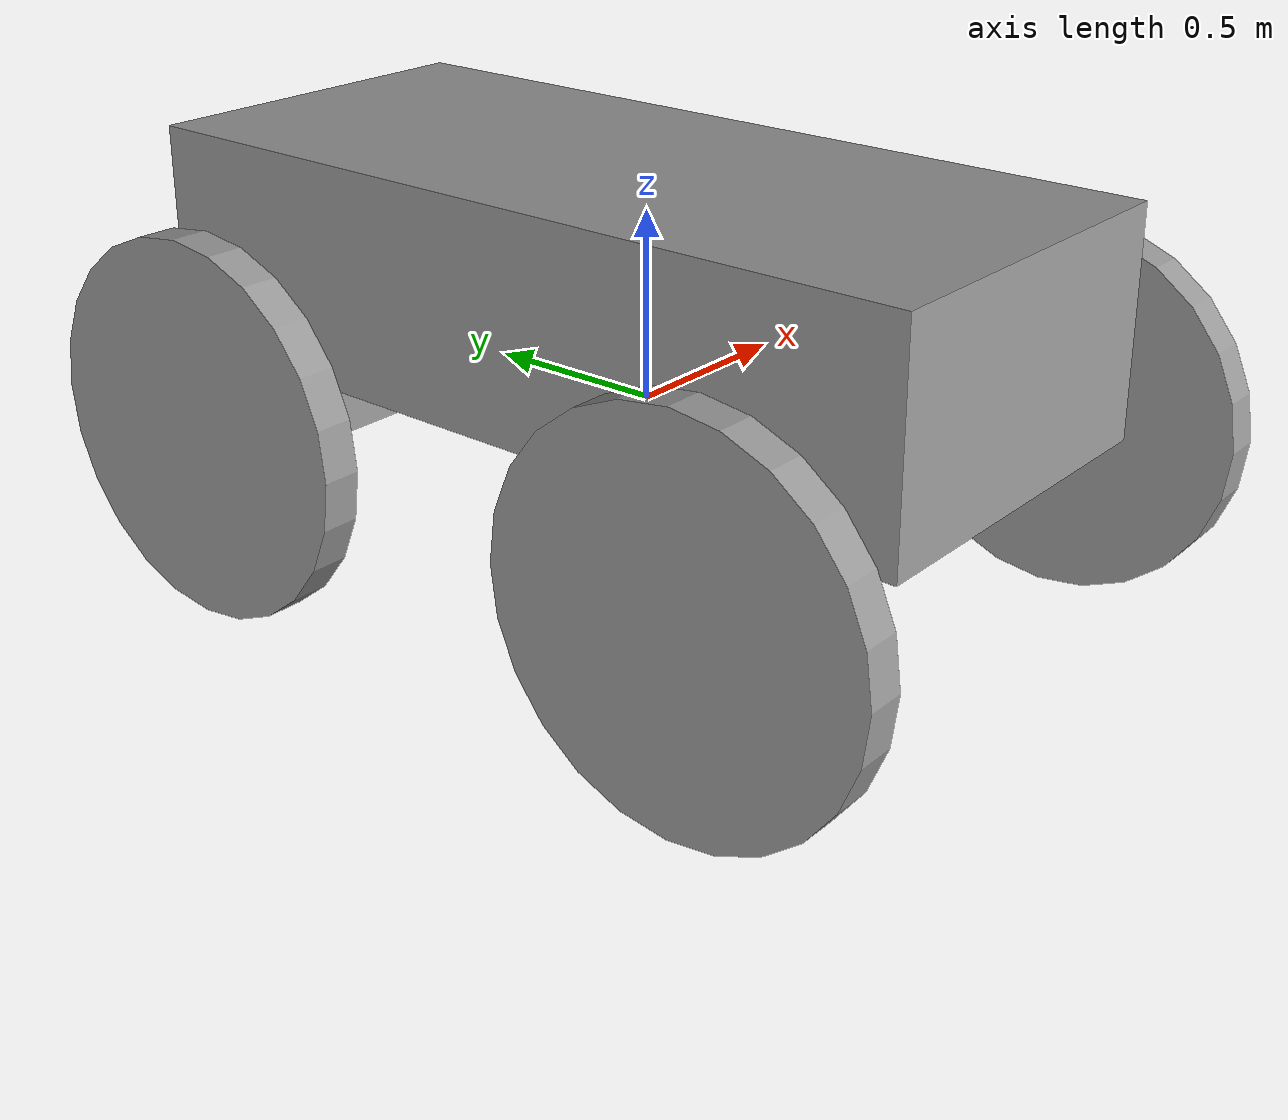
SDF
<?xml version='1.0'?>
<sdf version='1.6'>
  <model name='model'>
    <link name='link_0_clone'>
      <inertial>
        <mass>1</mass>
        <inertia>
          <ixx>0.145833</ixx>
          <ixy>0</ixy>
          <ixz>0</ixz>
          <iyy>0.145833</iyy>
          <iyz>0</iyz>
          <izz>0.125</izz>
        </inertia>
        <pose frame=''>0 0 0 0 -0 0</pose>
      </inertial>
      <pose frame=''>0.800049 0.773824 -0.030357 0 -0 0</pose>
      <gravity>1</gravity>
      <self_collide>0</self_collide>
      <kinematic>0</kinematic>
      <enable_wind>0</enable_wind>
      <visual name='visual'>
        <pose frame=''>0 0 0 0 1.5707 0</pose>
        <geometry>
          <cylinder>
            <radius>0.5</radius>
            <length>0.1</length>
          </cylinder>
        </geometry>
        <material>
          <lighting>1</lighting>
          <script>
            <uri>file://media/materials/scripts/gazebo.material</uri>
            <name>Gazebo/Grey</name>
          </script>
          <shader type='vertex'>
            <normal_map>__default__</normal_map>
          </shader>
          <ambient>0.3 0.3 0.3 1</ambient>
          <diffuse>0.7 0.7 0.7 1</diffuse>
          <specular>0.01 0.01 0.01 1</specular>
          <emissive>0 0 0 1</emissive>
        </material>
        <transparency>0</transparency>
        <cast_shadows>1</cast_shadows>
      </visual>
      <collision name='collision'>
        <laser_retro>0</laser_retro>
        <max_contacts>10</max_contacts>
        <pose frame=''>0 0 0 0 1.5707 0</pose>
        <geometry>
          <cylinder>
            <radius>0.5</radius>
            <length>0.1</length>
          </cylinder>
        </geometry>
        <surface>
          <friction>
            <ode>
              <mu>1</mu>
              <mu2>1</mu2>
              <fdir1>0 0 0</fdir1>
              <slip1>0</slip1>
              <slip2>0</slip2>
            </ode>
            <torsional>
              <coefficient>1</coefficient>
              <patch_radius>0</patch_radius>
              <surface_radius>0</surface_radius>
              <use_patch_radius>1</use_patch_radius>
              <ode>
                <slip>0</slip>
              </ode>
            </torsional>
          </friction>
          <bounce>
            <restitution_coefficient>0</restitution_coefficient>
            <threshold>1e+06</threshold>
          </bounce>
          <contact>
            <collide_without_contact>0</collide_without_contact>
            <collide_without_contact_bitmask>1</collide_without_contact_bitmask>
            <collide_bitmask>1</collide_bitmask>
            <ode>
              <soft_cfm>0</soft_cfm>
              <soft_erp>0.2</soft_erp>
              <kp>1e+13</kp>
              <kd>1</kd>
              <max_vel>0.01</max_vel>
              <min_depth>0</min_depth>
            </ode>
            <bullet>
              <split_impulse>1</split_impulse>
              <split_impulse_penetration_threshold>-0.01</split_impulse_penetration_threshold>
              <soft_cfm>0</soft_cfm>
              <soft_erp>0.2</soft_erp>
              <kp>1e+13</kp>
              <kd>1</kd>
            </bullet>
          </contact>
        </surface>
      </collision>
    </link>
    <link name='link_0_clone_clone'>
      <inertial>
        <mass>1</mass>
        <inertia>
          <ixx>0.145833</ixx>
          <ixy>0</ixy>
          <ixz>0</ixz>
          <iyy>0.145833</iyy>
          <iyz>0</iyz>
          <izz>0.125</izz>
        </inertia>
        <pose frame=''>0 0 0 0 -0 0</pose>
      </inertial>
      <pose frame=''>-0.800048 0.773824 -0.030357 0 -0 0</pose>
      <gravity>1</gravity>
      <self_collide>0</self_collide>
      <kinematic>0</kinematic>
      <enable_wind>0</enable_wind>
      <visual name='visual'>
        <pose frame=''>0 0 0 0 1.5707 0</pose>
        <geometry>
          <cylinder>
            <radius>0.5</radius>
            <length>0.1</length>
          </cylinder>
        </geometry>
        <material>
          <lighting>1</lighting>
          <script>
            <uri>file://media/materials/scripts/gazebo.material</uri>
            <name>Gazebo/Grey</name>
          </script>
          <shader type='vertex'>
            <normal_map>__default__</normal_map>
          </shader>
          <ambient>0.3 0.3 0.3 1</ambient>
          <diffuse>0.7 0.7 0.7 1</diffuse>
          <specular>0.01 0.01 0.01 1</specular>
          <emissive>0 0 0 1</emissive>
        </material>
        <transparency>0</transparency>
        <cast_shadows>1</cast_shadows>
      </visual>
      <collision name='collision'>
        <laser_retro>0</laser_retro>
        <max_contacts>10</max_contacts>
        <pose frame=''>0 0 0 0 1.5707 0</pose>
        <geometry>
          <cylinder>
            <radius>0.5</radius>
            <length>0.1</length>
          </cylinder>
        </geometry>
        <surface>
          <friction>
            <ode>
              <mu>1</mu>
              <mu2>1</mu2>
              <fdir1>0 0 0</fdir1>
              <slip1>0</slip1>
              <slip2>0</slip2>
            </ode>
            <torsional>
              <coefficient>1</coefficient>
              <patch_radius>0</patch_radius>
              <surface_radius>0</surface_radius>
              <use_patch_radius>1</use_patch_radius>
              <ode>
                <slip>0</slip>
              </ode>
            </torsional>
          </friction>
          <bounce>
            <restitution_coefficient>0</restitution_coefficient>
            <threshold>1e+06</threshold>
          </bounce>
          <contact>
            <collide_without_contact>0</collide_without_contact>
            <collide_without_contact_bitmask>1</collide_without_contact_bitmask>
            <collide_bitmask>1</collide_bitmask>
            <ode>
              <soft_cfm>0</soft_cfm>
              <soft_erp>0.2</soft_erp>
              <kp>1e+13</kp>
              <kd>1</kd>
              <max_vel>0.01</max_vel>
              <min_depth>0</min_depth>
            </ode>
            <bullet>
              <split_impulse>1</split_impulse>
              <split_impulse_penetration_threshold>-0.01</split_impulse_penetration_threshold>
              <soft_cfm>0</soft_cfm>
              <soft_erp>0.2</soft_erp>
              <kp>1e+13</kp>
              <kd>1</kd>
            </bullet>
          </contact>
        </surface>
      </collision>
    </link>
    <link name='link_0_clone_clone_clone'>
      <inertial>
        <mass>1</mass>
        <inertia>
          <ixx>0.145833</ixx>
          <ixy>0</ixy>
          <ixz>0</ixz>
          <iyy>0.145833</iyy>
          <iyz>0</iyz>
          <izz>0.125</izz>
        </inertia>
        <pose frame=''>0 0 0 0 -0 0</pose>
      </inertial>
      <pose frame=''>-0.800048 -0.758676 -0.062857 0 -0 0</pose>
      <gravity>1</gravity>
      <self_collide>0</self_collide>
      <kinematic>0</kinematic>
      <enable_wind>0</enable_wind>
      <visual name='visual'>
        <pose frame=''>0 0 0 0 1.5707 0</pose>
        <geometry>
          <cylinder>
            <radius>0.5</radius>
            <length>0.1</length>
          </cylinder>
        </geometry>
        <material>
          <lighting>1</lighting>
          <script>
            <uri>file://media/materials/scripts/gazebo.material</uri>
            <name>Gazebo/Grey</name>
          </script>
          <shader type='vertex'>
            <normal_map>__default__</normal_map>
          </shader>
          <ambient>0.3 0.3 0.3 1</ambient>
          <diffuse>0.7 0.7 0.7 1</diffuse>
          <specular>0.01 0.01 0.01 1</specular>
          <emissive>0 0 0 1</emissive>
        </material>
        <transparency>0</transparency>
        <cast_shadows>1</cast_shadows>
      </visual>
      <collision name='collision'>
        <laser_retro>0</laser_retro>
        <max_contacts>10</max_contacts>
        <pose frame=''>0 0 0 0 1.5707 0</pose>
        <geometry>
          <cylinder>
            <radius>0.5</radius>
            <length>0.1</length>
          </cylinder>
        </geometry>
        <surface>
          <friction>
            <ode>
              <mu>1</mu>
              <mu2>1</mu2>
              <fdir1>0 0 0</fdir1>
              <slip1>0</slip1>
              <slip2>0</slip2>
            </ode>
            <torsional>
              <coefficient>1</coefficient>
              <patch_radius>0</patch_radius>
              <surface_radius>0</surface_radius>
              <use_patch_radius>1</use_patch_radius>
              <ode>
                <slip>0</slip>
              </ode>
            </torsional>
          </friction>
          <bounce>
            <restitution_coefficient>0</restitution_coefficient>
            <threshold>1e+06</threshold>
          </bounce>
          <contact>
            <collide_without_contact>0</collide_without_contact>
            <collide_without_contact_bitmask>1</collide_without_contact_bitmask>
            <collide_bitmask>1</collide_bitmask>
            <ode>
              <soft_cfm>0</soft_cfm>
              <soft_erp>0.2</soft_erp>
              <kp>1e+13</kp>
              <kd>1</kd>
              <max_vel>0.01</max_vel>
              <min_depth>0</min_depth>
            </ode>
            <bullet>
              <split_impulse>1</split_impulse>
              <split_impulse_penetration_threshold>-0.01</split_impulse_penetration_threshold>
              <soft_cfm>0</soft_cfm>
              <soft_erp>0.2</soft_erp>
              <kp>1e+13</kp>
              <kd>1</kd>
            </bullet>
          </contact>
        </surface>
      </collision>
    </link>
    <link name='link_0_clone_clone_clone_0'>
      <inertial>
        <mass>1</mass>
        <inertia>
          <ixx>0.145833</ixx>
          <ixy>0</ixy>
          <ixz>0</ixz>
          <iyy>0.145833</iyy>
          <iyz>0</iyz>
          <izz>0.125</izz>
        </inertia>
        <pose frame=''>0 0 0 0 -0 0</pose>
      </inertial>
      <pose frame=''>0.800049 -0.758676 -0.062857 0 -0 0</pose>
      <gravity>1</gravity>
      <self_collide>0</self_collide>
      <kinematic>0</kinematic>
      <enable_wind>0</enable_wind>
      <visual name='visual'>
        <pose frame=''>0 0 0 0 1.5707 0</pose>
        <geometry>
          <cylinder>
            <radius>0.5</radius>
            <length>0.1</length>
          </cylinder>
        </geometry>
        <material>
          <lighting>1</lighting>
          <script>
            <uri>file://media/materials/scripts/gazebo.material</uri>
            <name>Gazebo/Grey</name>
          </script>
          <shader type='vertex'>
            <normal_map>__default__</normal_map>
          </shader>
          <ambient>0.3 0.3 0.3 1</ambient>
          <diffuse>0.7 0.7 0.7 1</diffuse>
          <specular>0.01 0.01 0.01 1</specular>
          <emissive>0 0 0 1</emissive>
        </material>
        <transparency>0</transparency>
        <cast_shadows>1</cast_shadows>
      </visual>
      <collision name='collision'>
        <laser_retro>0</laser_retro>
        <max_contacts>10</max_contacts>
        <pose frame=''>0 0 0 0 1.5707 0</pose>
        <geometry>
          <cylinder>
            <radius>0.5</radius>
            <length>0.1</length>
          </cylinder>
        </geometry>
        <surface>
          <friction>
            <ode>
              <mu>1</mu>
              <mu2>1</mu2>
              <fdir1>0 0 0</fdir1>
              <slip1>0</slip1>
              <slip2>0</slip2>
            </ode>
            <torsional>
              <coefficient>1</coefficient>
              <patch_radius>0</patch_radius>
              <surface_radius>0</surface_radius>
              <use_patch_radius>1</use_patch_radius>
              <ode>
                <slip>0</slip>
              </ode>
            </torsional>
          </friction>
          <bounce>
            <restitution_coefficient>0</restitution_coefficient>
            <threshold>1e+06</threshold>
          </bounce>
          <contact>
            <collide_without_contact>0</collide_without_contact>
            <collide_without_contact_bitmask>1</collide_without_contact_bitmask>
            <collide_bitmask>1</collide_bitmask>
            <ode>
              <soft_cfm>0</soft_cfm>
              <soft_erp>0.2</soft_erp>
              <kp>1e+13</kp>
              <kd>1</kd>
              <max_vel>0.01</max_vel>
              <min_depth>0</min_depth>
            </ode>
            <bullet>
              <split_impulse>1</split_impulse>
              <split_impulse_penetration_threshold>-0.01</split_impulse_penetration_threshold>
              <soft_cfm>0</soft_cfm>
              <soft_erp>0.2</soft_erp>
              <kp>1e+13</kp>
              <kd>1</kd>
            </bullet>
          </contact>
        </surface>
      </collision>
    </link>
    <link name='link_1'>
      <inertial>
        <mass>1</mass>
        <inertia>
          <ixx>0.166667</ixx>
          <ixy>0</ixy>
          <ixz>0</ixz>
          <iyy>0.166667</iyy>
          <iyz>0</iyz>
          <izz>0.166667</izz>
        </inertia>
        <pose frame=''>0 0 0 0 -0 0</pose>
      </inertial>
      <pose frame=''>0 0.741324 -0.062857 0 -0 0</pose>
      <gravity>1</gravity>
      <self_collide>0</self_collide>
      <kinematic>0</kinematic>
      <enable_wind>0</enable_wind>
      <visual name='visual'>
        <pose frame=''>0 0 0 0 -0 0</pose>
        <geometry>
          <box>
            <size>1.5 0.15 0.15</size>
          </box>
        </geometry>
        <material>
          <lighting>1</lighting>
          <script>
            <uri>file://media/materials/scripts/gazebo.material</uri>
            <name>Gazebo/Grey</name>
          </script>
          <shader type='vertex'>
            <normal_map>__default__</normal_map>
          </shader>
          <ambient>0.3 0.3 0.3 1</ambient>
          <diffuse>0.7 0.7 0.7 1</diffuse>
          <specular>0.01 0.01 0.01 1</specular>
          <emissive>0 0 0 1</emissive>
        </material>
        <transparency>0</transparency>
        <cast_shadows>1</cast_shadows>
      </visual>
      <collision name='collision'>
        <laser_retro>0</laser_retro>
        <max_contacts>10</max_contacts>
        <pose frame=''>0 0 0 0 -0 0</pose>
        <geometry>
          <box>
            <size>1.5 0.15 0.15</size>
          </box>
        </geometry>
        <surface>
          <friction>
            <ode>
              <mu>1</mu>
              <mu2>1</mu2>
              <fdir1>0 0 0</fdir1>
              <slip1>0</slip1>
              <slip2>0</slip2>
            </ode>
            <torsional>
              <coefficient>1</coefficient>
              <patch_radius>0</patch_radius>
              <surface_radius>0</surface_radius>
              <use_patch_radius>1</use_patch_radius>
              <ode>
                <slip>0</slip>
              </ode>
            </torsional>
          </friction>
          <bounce>
            <restitution_coefficient>0</restitution_coefficient>
            <threshold>1e+06</threshold>
          </bounce>
          <contact>
            <collide_without_contact>0</collide_without_contact>
            <collide_without_contact_bitmask>1</collide_without_contact_bitmask>
            <collide_bitmask>1</collide_bitmask>
            <ode>
              <soft_cfm>0</soft_cfm>
              <soft_erp>0.2</soft_erp>
              <kp>1e+13</kp>
              <kd>1</kd>
              <max_vel>0.01</max_vel>
              <min_depth>0</min_depth>
            </ode>
            <bullet>
              <split_impulse>1</split_impulse>
              <split_impulse_penetration_threshold>-0.01</split_impulse_penetration_threshold>
              <soft_cfm>0</soft_cfm>
              <soft_erp>0.2</soft_erp>
              <kp>1e+13</kp>
              <kd>1</kd>
            </bullet>
          </contact>
        </surface>
      </collision>
    </link>
    <link name='link_1_clone'>
      <inertial>
        <mass>1</mass>
        <inertia>
          <ixx>0.166667</ixx>
          <ixy>0</ixy>
          <ixz>0</ixz>
          <iyy>0.166667</iyy>
          <iyz>0</iyz>
          <izz>0.166667</izz>
        </inertia>
        <pose frame=''>0 0 0 0 -0 0</pose>
      </inertial>
      <pose frame=''>0 -0.758676 -0.062857 0 -0 0</pose>
      <gravity>1</gravity>
      <self_collide>0</self_collide>
      <kinematic>0</kinematic>
      <enable_wind>0</enable_wind>
      <visual name='visual'>
        <pose frame=''>0 0 0 0 -0 0</pose>
        <geometry>
          <box>
            <size>1.5 0.15 0.15</size>
          </box>
        </geometry>
        <material>
          <lighting>1</lighting>
          <script>
            <uri>file://media/materials/scripts/gazebo.material</uri>
            <name>Gazebo/Grey</name>
          </script>
          <shader type='vertex'>
            <normal_map>__default__</normal_map>
          </shader>
          <ambient>0.3 0.3 0.3 1</ambient>
          <diffuse>0.7 0.7 0.7 1</diffuse>
          <specular>0.01 0.01 0.01 1</specular>
          <emissive>0 0 0 1</emissive>
        </material>
        <transparency>0</transparency>
        <cast_shadows>1</cast_shadows>
      </visual>
      <collision name='collision'>
        <laser_retro>0</laser_retro>
        <max_contacts>10</max_contacts>
        <pose frame=''>0 0 0 0 -0 0</pose>
        <geometry>
          <box>
            <size>1.5 0.15 0.15</size>
          </box>
        </geometry>
        <surface>
          <friction>
            <ode>
              <mu>1</mu>
              <mu2>1</mu2>
              <fdir1>0 0 0</fdir1>
              <slip1>0</slip1>
              <slip2>0</slip2>
            </ode>
            <torsional>
              <coefficient>1</coefficient>
              <patch_radius>0</patch_radius>
              <surface_radius>0</surface_radius>
              <use_patch_radius>1</use_patch_radius>
              <ode>
                <slip>0</slip>
              </ode>
            </torsional>
          </friction>
          <bounce>
            <restitution_coefficient>0</restitution_coefficient>
            <threshold>1e+06</threshold>
          </bounce>
          <contact>
            <collide_without_contact>0</collide_without_contact>
            <collide_without_contact_bitmask>1</collide_without_contact_bitmask>
            <collide_bitmask>1</collide_bitmask>
            <ode>
              <soft_cfm>0</soft_cfm>
              <soft_erp>0.2</soft_erp>
              <kp>1e+13</kp>
              <kd>1</kd>
              <max_vel>0.01</max_vel>
              <min_depth>0</min_depth>
            </ode>
            <bullet>
              <split_impulse>1</split_impulse>
              <split_impulse_penetration_threshold>-0.01</split_impulse_penetration_threshold>
              <soft_cfm>0</soft_cfm>
              <soft_erp>0.2</soft_erp>
              <kp>1e+13</kp>
              <kd>1</kd>
            </bullet>
          </contact>
        </surface>
      </collision>
    </link>
    <link name='link_4'>
      <inertial>
        <mass>2.30548</mass>
        <inertia>
          <ixx>1.2133</ixx>
          <ixy>0</ixy>
          <ixz>0</ixz>
          <iyy>0.384247</iyy>
          <iyz>0</iyz>
          <izz>1.2133</izz>
        </inertia>
        <pose frame=''>0 0 0 0 -0 0</pose>
      </inertial>
      <pose frame=''>0 0.069782 0.312143 0 -0 0</pose>
      <gravity>1</gravity>
      <self_collide>0</self_collide>
      <kinematic>0</kinematic>
      <enable_wind>0</enable_wind>
      <visual name='visual'>
        <pose frame=''>0 0 0 0 -0 0</pose>
        <geometry>
          <box>
            <size>1 2.30548 0.6</size>
          </box>
        </geometry>
        <material>
          <lighting>1</lighting>
          <script>
            <uri>file://media/materials/scripts/gazebo.material</uri>
            <name>Gazebo/Grey</name>
          </script>
          <emissive>0 0 0 1</emissive>
          <shader type='vertex'>
            <normal_map>__default__</normal_map>
          </shader>
          <ambient>0.3 0.3 0.3 1</ambient>
          <diffuse>0.7 0.7 0.7 1</diffuse>
          <specular>0.01 0.01 0.01 1</specular>
        </material>
        <transparency>0</transparency>
        <cast_shadows>1</cast_shadows>
      </visual>
      <collision name='collision'>
        <laser_retro>0</laser_retro>
        <max_contacts>10</max_contacts>
        <pose frame=''>0 0 0 0 -0 0</pose>
        <geometry>
          <box>
            <size>1 2.30548 0.6</size>
          </box>
        </geometry>
        <surface>
          <friction>
            <ode>
              <mu>1</mu>
              <mu2>1</mu2>
              <fdir1>0 0 0</fdir1>
              <slip1>0</slip1>
              <slip2>0</slip2>
            </ode>
            <torsional>
              <coefficient>1</coefficient>
              <patch_radius>0</patch_radius>
              <surface_radius>0</surface_radius>
              <use_patch_radius>1</use_patch_radius>
              <ode>
                <slip>0</slip>
              </ode>
            </torsional>
          </friction>
          <bounce>
            <restitution_coefficient>0</restitution_coefficient>
            <threshold>1e+06</threshold>
          </bounce>
          <contact>
            <collide_without_contact>0</collide_without_contact>
            <collide_without_contact_bitmask>1</collide_without_contact_bitmask>
            <collide_bitmask>1</collide_bitmask>
            <ode>
              <soft_cfm>0</soft_cfm>
              <soft_erp>0.2</soft_erp>
              <kp>1e+13</kp>
              <kd>1</kd>
              <max_vel>0.01</max_vel>
              <min_depth>0</min_depth>
            </ode>
            <bullet>
              <split_impulse>1</split_impulse>
              <split_impulse_penetration_threshold>-0.01</split_impulse_penetration_threshold>
              <soft_cfm>0</soft_cfm>
              <soft_erp>0.2</soft_erp>
              <kp>1e+13</kp>
              <kd>1</kd>
            </bullet>
          </contact>
        </surface>
      </collision>
    </link>
    <joint name='link_1_JOINT_2' type='revolute'>
      <parent>link_1</parent>
      <child>link_0_clone</child>
      <pose frame=''>0 0 0 0 -0 0</pose>
      <axis>
        <xyz>1 0 0</xyz>
        <use_parent_model_frame>0</use_parent_model_frame>
        <limit>
          <lower>-1.79769e+308</lower>
          <upper>1.79769e+308</upper>
          <effort>-1</effort>
          <velocity>-1</velocity>
        </limit>
        <dynamics>
          <spring_reference>0</spring_reference>
          <spring_stiffness>0</spring_stiffness>
          <damping>0</damping>
        </dynamics>
      </axis>
      <physics>
        <ode>
          <limit>
            <cfm>0</cfm>
            <erp>0.2</erp>
          </limit>
          <suspension>
            <cfm>0</cfm>
            <erp>0.2</erp>
          </suspension>
        </ode>
      </physics>
    </joint>
    <joint name='link_1_JOINT_3' type='revolute'>
      <parent>link_1</parent>
      <child>link_0_clone_clone</child>
      <pose frame=''>0 0 0 0 -0 0</pose>
      <axis>
        <xyz>1 0 0</xyz>
        <use_parent_model_frame>0</use_parent_model_frame>
        <limit>
          <lower>-1.79769e+308</lower>
          <upper>1.79769e+308</upper>
          <effort>-1</effort>
          <velocity>-1</velocity>
        </limit>
        <dynamics>
          <spring_reference>0</spring_reference>
          <spring_stiffness>0</spring_stiffness>
          <damping>0</damping>
        </dynamics>
      </axis>
      <physics>
        <ode>
          <limit>
            <cfm>0</cfm>
            <erp>0.2</erp>
          </limit>
          <suspension>
            <cfm>0</cfm>
            <erp>0.2</erp>
          </suspension>
        </ode>
      </physics>
    </joint>
    <joint name='link_1_JOINT_4' type='revolute'>
      <parent>link_1</parent>
      <child>link_1_clone</child>
      <pose frame=''>0 0 0 0 -0 0</pose>
      <axis>
        <xyz>1 0 0</xyz>
        <use_parent_model_frame>0</use_parent_model_frame>
        <limit>
          <lower>-1.79769e+308</lower>
          <upper>1.79769e+308</upper>
          <effort>-1</effort>
          <velocity>-1</velocity>
        </limit>
        <dynamics>
          <spring_reference>0</spring_reference>
          <spring_stiffness>0</spring_stiffness>
          <damping>0</damping>
        </dynamics>
      </axis>
      <physics>
        <ode>
          <limit>
            <cfm>0</cfm>
            <erp>0.2</erp>
          </limit>
          <suspension>
            <cfm>0</cfm>
            <erp>0.2</erp>
          </suspension>
        </ode>
      </physics>
    </joint>
    <joint name='link_1_JOINT_7' type='revolute'>
      <parent>link_1</parent>
      <child>link_4</child>
      <pose frame=''>0 0 0 0 -0 0</pose>
      <axis>
        <xyz>1 0 0</xyz>
        <use_parent_model_frame>0</use_parent_model_frame>
        <limit>
          <lower>-1.79769e+308</lower>
          <upper>1.79769e+308</upper>
          <effort>-1</effort>
          <velocity>-1</velocity>
        </limit>
        <dynamics>
          <spring_reference>0</spring_reference>
          <spring_stiffness>0</spring_stiffness>
          <damping>0</damping>
        </dynamics>
      </axis>
      <physics>
        <ode>
          <limit>
            <cfm>0</cfm>
            <erp>0.2</erp>
          </limit>
          <suspension>
            <cfm>0</cfm>
            <erp>0.2</erp>
          </suspension>
        </ode>
      </physics>
    </joint>
    <joint name='link_1_JOINT_8' type='revolute'>
      <parent>link_1</parent>
      <child>link_4</child>
      <pose frame=''>0 0 0 0 -0 0</pose>
      <axis>
        <xyz>1 0 0</xyz>
        <use_parent_model_frame>0</use_parent_model_frame>
        <limit>
          <lower>-1.79769e+308</lower>
          <upper>1.79769e+308</upper>
          <effort>-1</effort>
          <velocity>-1</velocity>
        </limit>
        <dynamics>
          <spring_reference>0</spring_reference>
          <spring_stiffness>0</spring_stiffness>
          <damping>0</damping>
        </dynamics>
      </axis>
      <physics>
        <ode>
          <limit>
            <cfm>0</cfm>
            <erp>0.2</erp>
          </limit>
          <suspension>
            <cfm>0</cfm>
            <erp>0.2</erp>
          </suspension>
        </ode>
      </physics>
    </joint>
    <joint name='link_1_clone_JOINT_5' type='revolute'>
      <parent>link_1_clone</parent>
      <child>link_0_clone_clone_clone</child>
      <pose frame=''>0 0 0 0 -0 0</pose>
      <axis>
        <xyz>1 0 0</xyz>
        <use_parent_model_frame>0</use_parent_model_frame>
        <limit>
          <lower>-1.79769e+308</lower>
          <upper>1.79769e+308</upper>
          <effort>-1</effort>
          <velocity>-1</velocity>
        </limit>
        <dynamics>
          <spring_reference>0</spring_reference>
          <spring_stiffness>0</spring_stiffness>
          <damping>0</damping>
        </dynamics>
      </axis>
      <physics>
        <ode>
          <limit>
            <cfm>0</cfm>
            <erp>0.2</erp>
          </limit>
          <suspension>
            <cfm>0</cfm>
            <erp>0.2</erp>
          </suspension>
        </ode>
      </physics>
    </joint>
    <joint name='link_1_clone_JOINT_6' type='revolute'>
      <parent>link_1_clone</parent>
      <child>link_0_clone_clone_clone_0</child>
      <pose frame=''>0 0 0 0 -0 0</pose>
      <axis>
        <xyz>1 0 0</xyz>
        <use_parent_model_frame>0</use_parent_model_frame>
        <limit>
          <lower>-1.79769e+308</lower>
          <upper>1.79769e+308</upper>
          <effort>-1</effort>
          <velocity>-1</velocity>
        </limit>
        <dynamics>
          <spring_reference>0</spring_reference>
          <spring_stiffness>0</spring_stiffness>
          <damping>0</damping>
        </dynamics>
      </axis>
      <physics>
        <ode>
          <limit>
            <cfm>0</cfm>
            <erp>0.2</erp>
          </limit>
          <suspension>
            <cfm>0</cfm>
            <erp>0.2</erp>
          </suspension>
        </ode>
      </physics>
    </joint>
    <joint name='link_1_clone_JOINT_9' type='revolute'>
      <parent>link_1_clone</parent>
      <child>link_4</child>
      <pose frame=''>0 0 0 0 -0 0</pose>
      <axis>
        <xyz>1 0 0</xyz>
        <use_parent_model_frame>0</use_parent_model_frame>
        <limit>
          <lower>-1.79769e+308</lower>
          <upper>1.79769e+308</upper>
          <effort>-1</effort>
          <velocity>-1</velocity>
        </limit>
        <dynamics>
          <spring_reference>0</spring_reference>
          <spring_stiffness>0</spring_stiffness>
          <damping>0</damping>
        </dynamics>
      </axis>
      <physics>
        <ode>
          <limit>
            <cfm>0</cfm>
            <erp>0.2</erp>
          </limit>
          <suspension>
            <cfm>0</cfm>
            <erp>0.2</erp>
          </suspension>
        </ode>
      </physics>
    </joint>
    <static>0</static>
    <allow_auto_disable>1</allow_auto_disable>
  </model>
</sdf>
